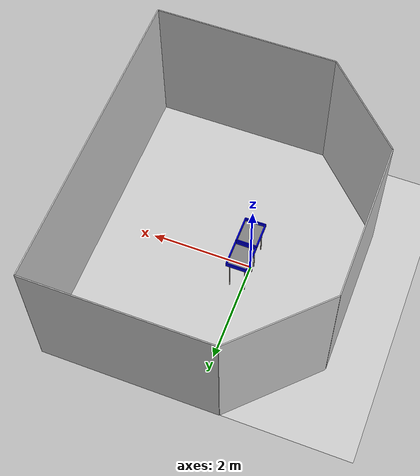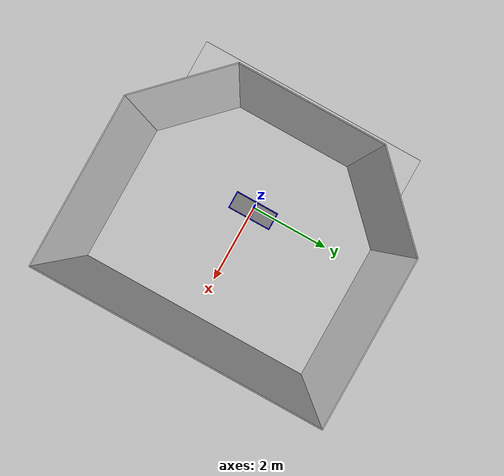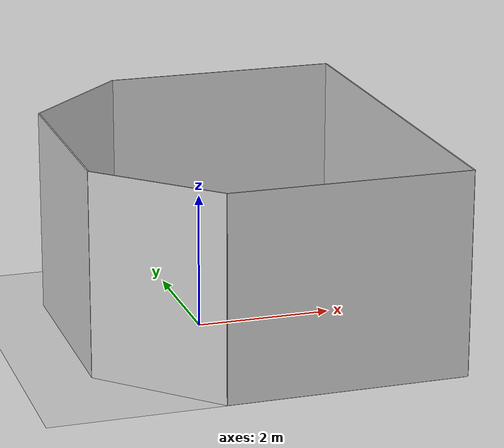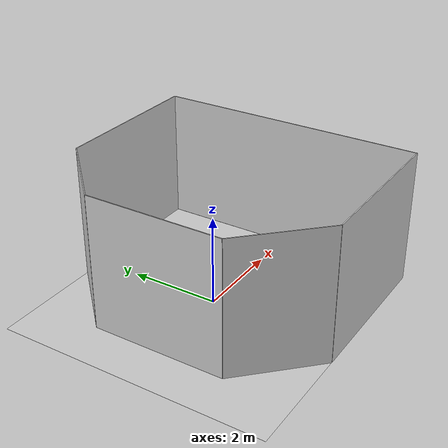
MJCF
<mujoco model="bins_arena">
  <asset>
    <texture builtin="gradient" height="256" rgb1=".9 .9 1." rgb2=".2 .3 .4" type="skybox" width="256"/>
    <texture file="../textures/light-gray-floor-tile.png" type="2d" name="texplane"/>
    <texture file="../textures/light-gray-plaster.png" type="2d" name="tex-light-gray-plaster"/>
    <material name="floorplane" reflectance="0.01" shininess="0.0" specular="0.0" texrepeat="2 2" texture="texplane" texuniform="true"/>
    <!-- steel legs -->
    <texture file="../textures/steel-brushed.png" type="cube" name="tex-steel-brushed"/>
    <material name="table_legs_metal" reflectance="0.8" shininess="0.8" texrepeat="1 1" texture="tex-steel-brushed" />
    <!-- plaster walls -->
    <texture file="../textures/light-gray-plaster.png" type="2d" name="tex-light-gray-plaster"/>
    <material name="walls_mat" reflectance="0.0" shininess="0.1" specular="0.1" texrepeat="3 3" texture="tex-light-gray-plaster" texuniform="true" />
    <!-- bins -->
    <texture file="../textures/light-wood.png" type="2d" name="tex-light-wood"/>
    <texture file="../textures/dark-wood.png" type="2d" name="tex-dark-wood"/>
    <material name="light-wood" reflectance="0" texrepeat="15 15" texture="tex-light-wood" texuniform="true"/>
    <material name="dark-wood" reflectance="0" texrepeat="5 5" texture="tex-dark-wood" texuniform="true"/>
    <material name="light-gray-plaster" reflectance="0" texrepeat="5 5" texture="tex-light-gray-plaster" texuniform="true"/>
  </asset>
  <worldbody>
    <geom condim="3" group="1" material="floorplane" name="floor" pos="0 0 0" size="3 3 .125" type="plane"/>
    <!-- Walls (visual only) -->
    <geom pos="-1.25 2.25 1.5" quat="0.6532815 0.6532815 0.2705981 0.2705981" size="1.06 1.5 0.01" type="box" conaffinity="0" contype="0" group="1" name="wall_leftcorner_visual" material="walls_mat"/>
    <geom pos="-1.25 -2.25 1.5" quat="0.6532815 0.6532815 -0.2705981 -0.2705981" size="1.06 1.5 0.01" type="box" conaffinity="0" contype="0" group="1" name="wall_rightcorner_visual" material="walls_mat"/>
    <geom pos="1.25 3 1.5" quat="0.7071 0.7071 0 0" size="1.75 1.5 0.01" type="box" conaffinity="0" contype="0" group="1" name="wall_left_visual" material="walls_mat"/>
    <geom pos="1.25 -3 1.5" quat="0.7071 -0.7071 0 0" size="1.75 1.5 0.01" type="box" conaffinity="0" contype="0" group="1" name="wall_right_visual" material="walls_mat"/>
    <geom pos="-2 0 1.5" quat="0.5 0.5 0.5 0.5" size="1.5 1.5 0.01" type="box" conaffinity="0" contype="0" group="1" name="wall_rear_visual" material="walls_mat"/>
    <geom pos="3 0 1.5" quat="0.5 0.5 -0.5 -0.5" size="3 1.5 0.01" type="box" conaffinity="0" contype="0" group="1" name="wall_front_visual" material="walls_mat"/>
    <!-- bins -->
    <body name="bin1" pos="0.1 -0.25 0.8">
      <geom pos="0 0 0" size="0.2 0.25 0.02" type="box" group="0" friction="1 0.005 0.0001"/>
      <geom pos="0 0 0" material="light-gray-plaster" size="0.2 0.25 0.02" type="box" conaffinity="0" contype="0" group="1"/>
        <geom pos="0 0.25 0.05" size="0.21 0.01 0.05" type="box" group="0" friction="1 0.005 0.0001" rgba="0 0 1 1"/>
        <geom pos="0 0.25 0.05" size="0.21 0.01 0.05" type="box" conaffinity="0" contype="0" group="1" material="light-gray-plaster"/>
        <geom pos="0 -0.25 0.05" size="0.21 0.01 0.05" type="box" group="0" friction="1 0.005 0.0001" rgba="0 0 1 1"/>
        <geom pos="0 -0.25 0.05" size="0.21 0.01 0.05" type="box" conaffinity="0" contype="0" group="1" material="light-gray-plaster"/>
        <geom pos="0.2 0 0.05" size="0.01 0.25 0.05" type="box" group="0" friction="1 0.005 0.0001" rgba="0 0 1 1"/>
        <geom pos="0.2 0 0.05" size="0.01 0.25 0.05" type="box" conaffinity="0" contype="0" group="1" material="light-gray-plaster"/>
        <geom pos="-0.2 0 0.05" size="0.01 0.25 0.05" type="box" group="0" friction="1 0.005 0.0001" rgba="0 0 1 1"/>
        <geom pos="-0.2 0 0.05" size="0.01 0.25 0.05" type="box" conaffinity="0" contype="0" group="1" material="light-gray-plaster"/>
        <!-- Legs (visual only) -->
        <geom pos="0.15 0.2 -0.4" size="0.01 0.4" type="cylinder" conaffinity="0" contype="0" group="1" name="bin1_leg1_visual" material="table_legs_metal"/>
        <geom pos="-0.15 0.2 -0.4" size="0.01 0.4" type="cylinder" conaffinity="0" contype="0" group="1" name="bin1_leg2_visual" material="table_legs_metal"/>
        <geom pos="-0.15 -0.2 -0.4" size="0.01 0.4" type="cylinder" conaffinity="0" contype="0" group="1" name="bin1_leg3_visual" material="table_legs_metal"/>
        <geom pos="0.15 -0.2 -0.4" size="0.01 0.4" type="cylinder" conaffinity="0" contype="0" group="1" name="bin1_leg4_visual" material="table_legs_metal"/>
    </body>
    <body name="bin2" pos="0.1 0.28 0.8">
      <geom pos="0 0 0" size="0.2 0.25 0.02" type="box" group="0" friction="1 0.005 0.0001"/>
      <geom pos="0 0 0" size="0.2 0.25 0.02" type="box" conaffinity="0" contype="0" group="1" material="light-gray-plaster"/>
        <geom pos="0 0.25 0.05" size="0.21 0.01 0.05" type="box" group="0" friction="1 0.005 0.0001" rgba="0 0 1 1"/>
        <geom pos="0 0.25 0.05" size="0.21 0.01 0.05" type="box" conaffinity="0" contype="0" group="1" material="light-gray-plaster"/>
        <geom pos="0 -0.25 0.05" size="0.21 0.01 0.05" type="box" group="0" friction="1 0.005 0.0001" rgba="0 0 1 1"/>
        <geom pos="0 -0.25 0.05" size="0.21 0.01 0.05" type="box" conaffinity="0" contype="0" group="1" material="light-gray-plaster"/>
        <geom pos="0.2 0 0.05" size="0.01 0.25 0.05" type="box" group="0" friction="1 0.005 0.0001" rgba="0 0 1 1"/>
        <geom pos="0.2 0 0.05" size="0.01 0.25 0.05" type="box" conaffinity="0" contype="0" group="1" material="light-gray-plaster"/>
        <geom pos="-0.2 0 0.05" size="0.01 0.25 0.05" type="box" group="0" friction="1 0.005 0.0001" rgba="0 0 1 1"/>
        <geom pos="-0.2 0 0.05" size="0.01 0.25 0.05" type="box" conaffinity="0" contype="0" group="1" material="light-gray-plaster"/>
        <!-- Legs (visual only) -->
        <geom pos="0.15 0.2 -0.4" size="0.01 0.4" type="cylinder" conaffinity="0" contype="0" group="1" name="bin2_leg1_visual" material="table_legs_metal"/>
        <geom pos="-0.15 0.2 -0.4" size="0.01 0.4" type="cylinder" conaffinity="0" contype="0" group="1" name="bin2_leg2_visual" material="table_legs_metal"/>
        <geom pos="-0.15 -0.2 -0.4" size="0.01 0.4" type="cylinder" conaffinity="0" contype="0" group="1" name="bin2_leg3_visual" material="table_legs_metal"/>
        <geom pos="0.15 -0.2 -0.4" size="0.01 0.4" type="cylinder" conaffinity="0" contype="0" group="1" name="bin2_leg4_visual" material="table_legs_metal"/>
    </body>
    <light pos="1.0 1.0 1.5" dir="-0.2 -0.2 -1" specular="0.3 0.3 0.3" directional="true" castshadow="false"/>
    <!-- front view -->

    <!-- front view -->
    <camera mode="fixed" name="frontview" pos="1.6 0 1.45" quat="0.56 0.43 0.43 0.56"/>
    <!-- bird view -->
    <camera mode="fixed" name="birdview" pos="-0.15 0 2.2" quat="0.7071 0 0 0.7071"/>
    <!-- agent view -->
    <camera mode="fixed" name="agentview" pos="1.0 0 1.75" quat="0.653 0.271 0.271 0.653"/>

    <camera name="left_side_view" mode="fixed" pos="0.45 -0.5 1.7579572214102434" euler="0.13 0.4 1"/>
    <camera name="right_side_view" mode="fixed" pos="0.55 0.28 1.7579572214102434" euler="-0.35 0.5 2.3"/>
  </worldbody>
</mujoco>
